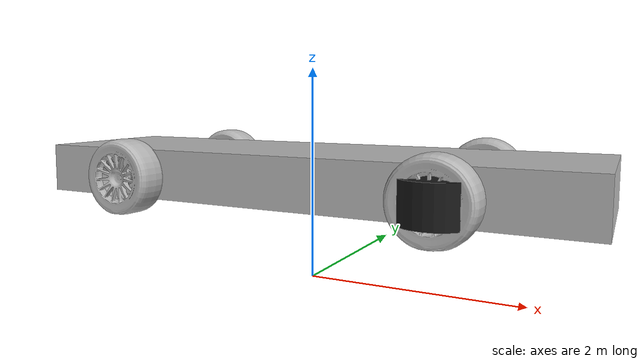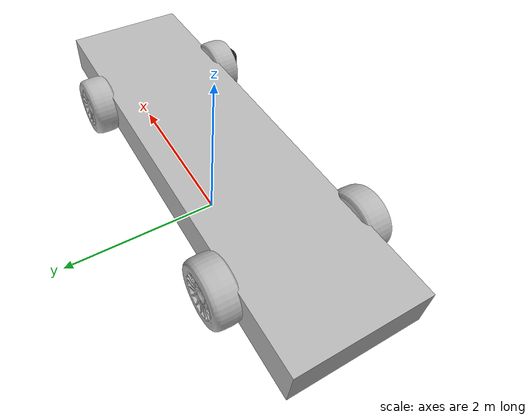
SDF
<?xml version="1.0"?>
<sdf version="1.9">
  <model name="four_wheeled_vehicle">
    <pose>0 0 1.0 0 0 0</pose>

    <!-- ========== Base Link ========== -->
    <link name="base_link">
      <inertial>
        <pose>0 0 0 0 0 0</pose>
        <mass>2000</mass>
        <inertia>
          <ixx>1200</ixx>
          <ixy>0</ixy>
          <ixz>0</ixz>
          <iyy>2500</iyy>
          <iyz>0</iyz>
          <izz>3000</izz>
        </inertia>
      </inertial>
      <collision name="base_link_collision">
        <pose>0 0 0 0 0 0</pose>
        <geometry>
          <box>
            <size>5.24 1.5 0.47</size>
          </box>
        </geometry>
      </collision>
      <visual name="base_link_visual">
        <pose>0 0 0 0 0 0</pose>
        <geometry>
          <box>
            <size>5.24 1.5 0.47</size>
          </box>
        </geometry>
      </visual>
    </link>

    <!-- ========== Front Left Steering ========== -->
    <joint name="front_left_steering_joint" type="revolute">
      <pose relative_to="base_link">1.445 0.833 -0.024 0 0 0</pose>
      <parent>base_link</parent>
      <child>front_left_steering_link</child>
      <axis>
        <xyz>0 0 1</xyz>
        <limit>
          <lower>-0.6</lower>
          <upper>0.6</upper>
          <effort>1e+06</effort>
          <velocity>10000</velocity>
        </limit>
        <dynamics>
          <damping>10</damping>
          <friction>0</friction>
          <spring_reference>0</spring_reference>
          <spring_stiffness>0</spring_stiffness>
        </dynamics>
      </axis>
    </joint>

    <link name="front_left_steering_link">
      <pose relative_to="front_left_steering_joint">0 0 0 0 0 0</pose>
      <inertial>
        <pose>0 0 0 0 0 0</pose>
        <mass>5</mass>
        <inertia>
          <ixx>0.0125</ixx>
          <ixy>0</ixy>
          <ixz>0</ixz>
          <iyy>0.0125</iyy>
          <iyz>0</iyz>
          <izz>0.025</izz>
        </inertia>
      </inertial>
      <visual name="front_left_steering_link_visual">
        <pose>0 0 0 0 0 0</pose>
        <geometry>
          <cylinder>
            <length>0.01</length>
            <radius>0.1</radius>
          </cylinder>
        </geometry>
      </visual>
    </link>

    <!-- Front Left Wheel Joint (drive, axis Z for AckermannSteering) -->
    <joint name="front_left_wheel_joint" type="revolute">
      <pose relative_to="front_left_steering_link">0 0 0 0 0 0</pose>
      <parent>front_left_steering_link</parent>
      <child>front_left_wheel_link</child>
      <axis>
        <xyz>0 1 0</xyz>
        <limit>
          <effort>5000</effort>
          <velocity>10000</velocity>
          <lower>-1e+16</lower>
          <upper>1e+16</upper>
        </limit>
        <dynamics>
          <damping>10.0</damping>
          <friction>0</friction>
          <spring_reference>0</spring_reference>
          <spring_stiffness>0</spring_stiffness>
        </dynamics>
      </axis>
    </joint>

    <link name="front_left_wheel_link">
      <pose relative_to="front_left_wheel_joint">0 0 0 0 0 0</pose>
      <inertial>
        <pose>0 0 0 0 0 0</pose>
        <mass>40</mass>
        <inertia>
          <ixx>1.4</ixx>
          <iyy>2.5</iyy>
          <izz>1.4</izz>
        </inertia>
      </inertial>
      <collision name="front_left_wheel_link_collision">
        <pose>0 0 0 1.5708 0 0</pose>
        <geometry>
          <cylinder>
            <length>0.35</length>
            <radius>0.3</radius>
          </cylinder>
        </geometry>
        <surface>
          <friction>
            <ode>
              <mu>1.0</mu>
              <mu2>1.0</mu2>
              <fdir1>0 0 1</fdir1>
            </ode>
            <bullet>
              <friction>0.8</friction>
              <friction2>0.8</friction2>
              <rolling_friction>0.05</rolling_friction>
            </bullet>
          </friction>
        </surface>
      </collision>
      <visual name="front_left_wheel_link_visual">
        <pose>0 0 0 0 0 0</pose>
        <geometry>
          <mesh>
            <uri>model://four_wheeled_vehicle/meshes/wheel_l.dae</uri>
          </mesh>
        </geometry>
      </visual>
      <visual name="front_left_wheel_link_marker">
        <pose>0 0 0.28 0 0 0</pose>
        <geometry>
          <sphere>
            <radius>0.03</radius>
          </sphere>
        </geometry>
        <material>
          <ambient>1 0 0 1</ambient>
          <diffuse>1 0 0 1</diffuse>
        </material>
      </visual>
    </link>

    <!-- ========== Front Right Steering ========== -->
    <joint name="front_right_steering_joint" type="revolute">
      <pose relative_to="base_link">1.445 -0.833 -0.024 0 0 0</pose>
      <parent>base_link</parent>
      <child>front_right_steering_link</child>
      <axis>
        <xyz>0 0 1</xyz>
        <limit>
          <lower>-0.6</lower>
          <upper>0.6</upper>
          <effort>1e+06</effort>
          <velocity>10000</velocity>
        </limit>
        <dynamics>
          <damping>10</damping>
          <friction>0</friction>
          <spring_reference>0</spring_reference>
          <spring_stiffness>0</spring_stiffness>
        </dynamics>
      </axis>
    </joint>

    <link name="front_right_steering_link">
      <pose relative_to="front_right_steering_joint">0 0 0 0 0 0</pose>
      <inertial>
        <pose>0 0 0 0 0 0</pose>
        <mass>5</mass>
        <inertia>
          <ixx>0.0125</ixx>
          <ixy>0</ixy>
          <ixz>0</ixz>
          <iyy>0.0125</iyy>
          <iyz>0</iyz>
          <izz>0.025</izz>
        </inertia>
      </inertial>
      <visual name="front_right_steering_link_visual">
        <pose>0 0 0 0 0 0</pose>
        <geometry>
          <cylinder>
            <radius>0.3</radius>
            <length>0.35</length>
          </cylinder>
        </geometry>
        <material>
          <ambient>0.1 0.1 0.1 1</ambient>
          <diffuse>0.1 0.1 0.1 1</diffuse>
        </material>
      </visual>
    </link>

    <!-- Front Right Wheel Joint (drive, axis Z) -->
    <joint name="front_right_wheel_joint" type="revolute">
      <pose relative_to="front_right_steering_link">0 0 0 0 0 0</pose>
      <parent>front_right_steering_link</parent>
      <child>front_right_wheel_link</child>
      <axis>
        <xyz>0 1 0</xyz>
        <limit>
          <effort>5000</effort>
          <velocity>10000</velocity>
          <lower>-1e+16</lower>
          <upper>1e+16</upper>
        </limit>
        <dynamics>
          <damping>10.0</damping>
          <friction>0</friction>
          <spring_reference>0</spring_reference>
          <spring_stiffness>0</spring_stiffness>
        </dynamics>
      </axis>
    </joint>

    <link name="front_right_wheel_link">
      <pose relative_to="front_right_wheel_joint">0 0 0 0 0 0</pose>
      <inertial>
        <pose>0 0 0 0 0 0</pose>
        <mass>40</mass>
        <inertia>
          <ixx>1.4</ixx>
          <iyy>2.5</iyy>
          <izz>1.4</izz>
        </inertia>
      </inertial>
      <collision name="front_right_wheel_link_collision">
        <pose>0 0 0 1.5708 0 0</pose>
        <geometry>
          <cylinder>
            <length>0.35</length>
            <radius>0.3</radius>
          </cylinder>
        </geometry>
        <surface>
          <friction>
            <ode>
              <mu>1.0</mu>
              <mu2>1.0</mu2>
              <fdir1>0 0 1</fdir1>
            </ode>
            <bullet>
              <friction>0.8</friction>
              <friction2>0.8</friction2>
              <rolling_friction>0.05</rolling_friction>
            </bullet>
          </friction>
        </surface>
      </collision>
      <visual name="front_right_wheel_link_visual">
        <pose>0 0 0 0 0 0</pose>
        <geometry>
          <mesh>
            <uri>model://four_wheeled_vehicle/meshes/wheel_r.dae</uri>
          </mesh>
        </geometry>
      </visual>
      <visual name="front_right_wheel_link_marker">
        <pose>0 0 0.28 0 0 0</pose>
        <geometry>
          <sphere>
            <radius>0.03</radius>
          </sphere>
        </geometry>
        <material>
          <ambient>1 0 0 1</ambient>
          <diffuse>1 0 0 1</diffuse>
        </material>
      </visual>
    </link>

    <!-- ========== Rear Left Wheel ========== -->
    <joint name="rear_left_wheel_joint" type="revolute">
      <pose relative_to="base_link">-1.545 0.833 -0.024 0 0 0</pose>
      <parent>base_link</parent>
      <child>rear_left_wheel_link</child>
      <axis>
        <xyz>0 1 0</xyz>
        <limit>
          <effort>5000</effort>
          <velocity>10000</velocity>
          <lower>-1e+16</lower>
          <upper>1e+16</upper>
        </limit>
        <dynamics>
          <damping>10.0</damping>
          <friction>0</friction>
          <spring_reference>0</spring_reference>
          <spring_stiffness>0</spring_stiffness>
        </dynamics>
      </axis>
    </joint>

    <link name="rear_left_wheel_link">
      <pose relative_to="rear_left_wheel_joint">0 0 0 0 0 0</pose>
      <inertial>
        <pose>0 0 0 0 0 0</pose>
        <mass>40</mass>
        <inertia>
          <ixx>1.4</ixx>
          <iyy>2.5</iyy>
          <izz>1.4</izz>
        </inertia>
      </inertial>
      <collision name="rear_left_wheel_link_collision">
        <pose>0 0 0 1.5708 0 0</pose>
        <geometry>
          <cylinder>
            <length>0.35</length>
            <radius>0.3</radius>
          </cylinder>
        </geometry>
        <surface>
          <friction>
            <ode>
              <mu>1.0</mu>
              <mu2>1.0</mu2>
              <fdir1>0 0 1</fdir1>
            </ode>
            <bullet>
              <friction>0.8</friction>
              <friction2>0.8</friction2>
              <rolling_friction>0.05</rolling_friction>
            </bullet>
          </friction>
        </surface>
      </collision>
      <visual name="rear_left_wheel_link_visual">
        <pose>0 0 0 0 0 0</pose>
        <geometry>
          <mesh>
            <uri>model://four_wheeled_vehicle/meshes/wheel_l.dae</uri>
          </mesh>
        </geometry>
      </visual>
      <visual name="rear_left_wheel_link_marker">
        <pose>0 0 0.28 0 0 0</pose>
        <geometry>
          <sphere>
            <radius>0.03</radius>
          </sphere>
        </geometry>
        <material>
          <ambient>1 0 0 1</ambient>
          <diffuse>1 0 0 1</diffuse>
        </material>
      </visual>
    </link>

    <!-- ========== Rear Right Wheel ========== -->
    <joint name="rear_right_wheel_joint" type="revolute">
      <pose relative_to="base_link">-1.545 -0.833 -0.024 0 0 0</pose>
      <parent>base_link</parent>
      <child>rear_right_wheel_link</child>
      <axis>
        <xyz>0 1 0</xyz>
        <limit>
          <effort>5000</effort>
          <velocity>10000</velocity>
          <lower>-1e+16</lower>
          <upper>1e+16</upper>
        </limit>
        <dynamics>
          <damping>10.0</damping>
          <friction>0</friction>
          <spring_reference>0</spring_reference>
          <spring_stiffness>0</spring_stiffness>
        </dynamics>
      </axis>
    </joint>

    <link name="rear_right_wheel_link">
      <pose relative_to="rear_right_wheel_joint">0 0 0 0 0 0</pose>
      <inertial>
        <pose>0 0 0 0 0 0</pose>
        <mass>40</mass>
        <inertia>
          <ixx>1.4</ixx>
          <iyy>2.5</iyy>
          <izz>1.4</izz>
        </inertia>
      </inertial>
      <collision name="rear_right_wheel_link_collision">
        <pose>0 0 0 1.5708 0 0</pose>
        <geometry>
          <cylinder>
            <length>0.35</length>
            <radius>0.3</radius>
          </cylinder>
        </geometry>
        <surface>
          <friction>
            <ode>
              <mu>1.0</mu>
              <mu2>1.0</mu2>
              <fdir1>0 0 1</fdir1>
            </ode>
            <bullet>
              <friction>0.8</friction>
              <friction2>0.8</friction2>
              <rolling_friction>0.05</rolling_friction>
            </bullet>
          </friction>
        </surface>
      </collision>
      <visual name="rear_right_wheel_link_visual">
        <pose>0 0 0 0 0 0</pose>
        <geometry>
          <mesh>
            <uri>model://four_wheeled_vehicle/meshes/wheel_r.dae</uri>
          </mesh>
        </geometry>
      </visual>
      <visual name="rear_right_wheel_link_marker">
        <pose>0 0 0.28 0 0 0</pose>
        <geometry>
          <sphere>
            <radius>0.03</radius>
          </sphere>
        </geometry>
        <material>
          <ambient>1 0 0 1</ambient>
          <diffuse>1 0 0 1</diffuse>
        </material>
      </visual>
    </link>

    <!-- ========== AckermannSteering Plugin ========== -->
    <plugin
      filename="gz-sim-ackermann-steering-system"
      name="gz::sim::systems::AckermannSteering">
      <left_joint>rear_left_wheel_joint</left_joint>
      <left_joint>front_left_wheel_joint</left_joint>
      <right_joint>rear_right_wheel_joint</right_joint>
      <right_joint>front_right_wheel_joint</right_joint>
      <left_steering_joint>front_left_steering_joint</left_steering_joint>
      <right_steering_joint>front_right_steering_joint</right_steering_joint>
      <wheel_base>3.0</wheel_base>
      <wheel_separation>1.666</wheel_separation>
      <wheel_radius>0.3</wheel_radius>
      <steering_limit>0.6</steering_limit>
      <kingpin_width>1.666</kingpin_width>
      <min_velocity>-20.0</min_velocity>
      <max_velocity>20.0</max_velocity>
      <min_acceleration>-10</min_acceleration>
      <max_acceleration>10</max_acceleration>
      <odom_topic>/model/four_wheeled_vehicle/odometry_internal</odom_topic>
    </plugin>

    <!-- Odometry Publisher — uses correct frame IDs for ROS 2 consumers -->
    <plugin
      filename="gz-sim-odometry-publisher-system"
      name="gz::sim::systems::OdometryPublisher">
      <odom_frame>odom</odom_frame>
      <robot_base_frame>base_link</robot_base_frame>
      <odom_topic>/model/four_wheeled_vehicle/odometry</odom_topic>
      <odom_publish_frequency>10</odom_publish_frequency>
      <dimensions>3</dimensions>
    </plugin>

    <!-- ========== 3D LiDAR Sensor ========== -->
    <link name="lidar3d_link">
      <pose>0 0 1.25 0 0 0</pose>
      <gravity>0</gravity>
      <self_collide>false</self_collide>

      <sensor name="lidar3d" type="gpu_lidar">
        <always_on>1</always_on>
        <update_rate>10</update_rate>
        <visualize>false</visualize>
        <pose>0 0 0 0 0 0</pose>
        <ray>
          <scan>
            <horizontal>
              <samples>360</samples>
              <resolution>1</resolution>
              <min_angle>-1.3962634</min_angle>
              <max_angle>1.3962634</max_angle>
            </horizontal>
            <vertical>
              <samples>32</samples>
              <resolution>1</resolution>
              <min_angle>-0.261799</min_angle>
              <max_angle>0.261799</max_angle>
            </vertical>
          </scan>
          <range>
            <min>0.3</min>
            <max>100.0</max>
            <resolution>0.01</resolution>
          </range>
          <noise>
            <type>gaussian</type>
            <mean>0.0</mean>
            <stddev>0.02</stddev>
          </noise>
        </ray>
      </sensor>
    </link>

    <joint name="lidar3d_fixed_joint" type="fixed">
      <parent>base_link</parent>
      <child>lidar3d_link</child>
      <pose relative_to="base_link">1.30 0 0.95 0 0 0</pose>
    </joint>

    <!-- ========== GPS / NavSat Sensor ========== -->
    <link name="gps_link">
      <pose>0 0 1.25 0 0 0</pose>
      <gravity>0</gravity>
      <self_collide>false</self_collide>

      <sensor name="gps" type="navsat">
        <always_on>1</always_on>
        <update_rate>10</update_rate>
        <pose>0 0 0 0 0 0</pose>
      </sensor>
    </link>

    <joint name="gps_fixed_joint" type="fixed">
      <parent>base_link</parent>
      <child>gps_link</child>
      <pose relative_to="base_link">-0.50 0 0.95 0 0 0</pose>
    </joint>

    <!-- ========== IMU Sensor ========== -->
    <link name="imu_link">
      <pose>0 0 1.25 0 0 0</pose>
      <gravity>0</gravity>
      <self_collide>false</self_collide>

      <sensor name="imu" type="imu">
        <always_on>1</always_on>
        <update_rate>200</update_rate>
        <pose>0 0 0 0 0 0</pose>
        <imu>
          <noise>
            <type>gaussian</type>
            <accel>
              <mean>0.0</mean>
              <stddev>0.05</stddev>
              <bias_mean>0.0</bias_mean>
              <bias_stddev>0.0001</bias_stddev>
            </accel>
            <gyro>
              <mean>0.0</mean>
              <stddev>0.001</stddev>
              <bias_mean>0.0</bias_mean>
              <bias_stddev>0.0001</bias_stddev>
            </gyro>
          </noise>
        </imu>
      </sensor>
    </link>

    <joint name="imu_fixed_joint" type="fixed">
      <parent>base_link</parent>
      <child>imu_link</child>
      <pose relative_to="base_link">0 0 0.30 0 0 0</pose>
    </joint>

    <!-- ========== Camera Sensor ========== -->
    <link name="camera_link">
      <pose>0 0 1.35 0 0 0</pose>
      <gravity>0</gravity>
      <self_collide>false</self_collide>

      <sensor name="front_camera" type="camera">
        <always_on>1</always_on>
        <update_rate>30</update_rate>
        <pose>0 0 0 0 0 0</pose>
        <camera>
          <horizontal_fov>1.5707</horizontal_fov>
          <image>
            <width>1280</width>
            <height>720</height>
            <format>R8G8B8</format>
          </image>
          <clip>
            <near>0.05</near>
            <far>200.0</far>
          </clip>
          <distortion>
            <k1>0</k1><k2>0</k2><k3>0</k3><p1>0</p1><p2>0</p2>
          </distortion>
        </camera>
      </sensor>
    </link>

    <joint name="camera_fixed_joint" type="fixed">
      <parent>base_link</parent>
      <child>camera_link</child>
      <pose relative_to="base_link">2.20 0 0.60 0 0 0</pose>
    </joint>

  </model>
</sdf>
